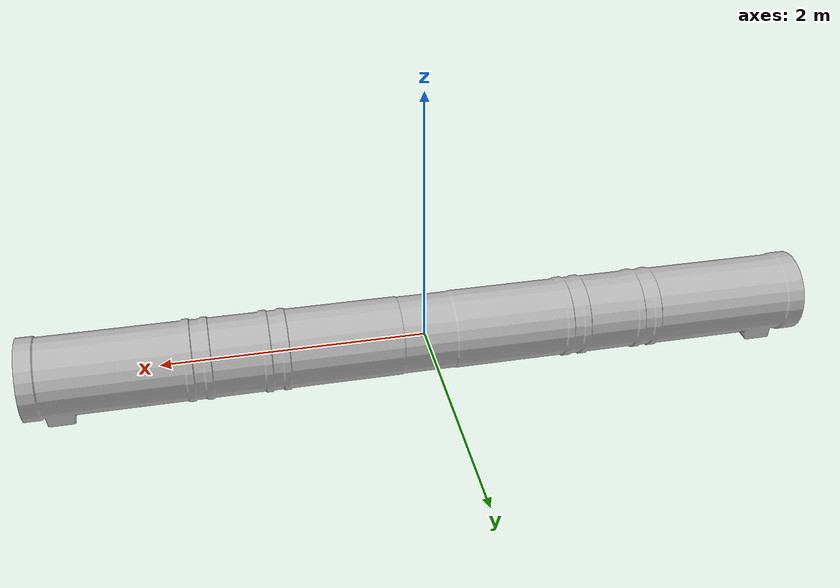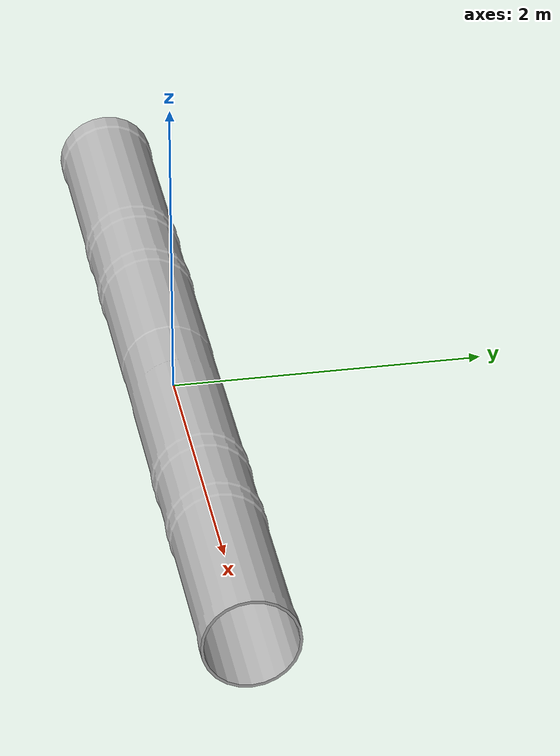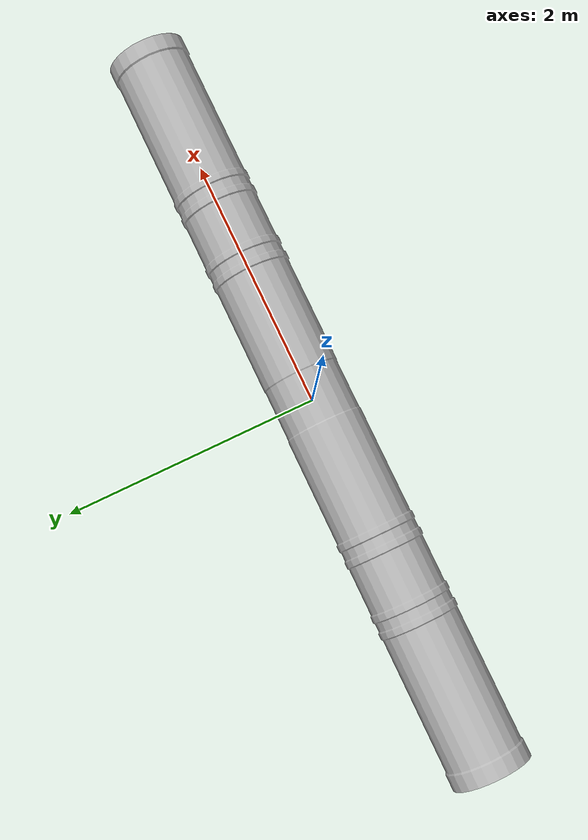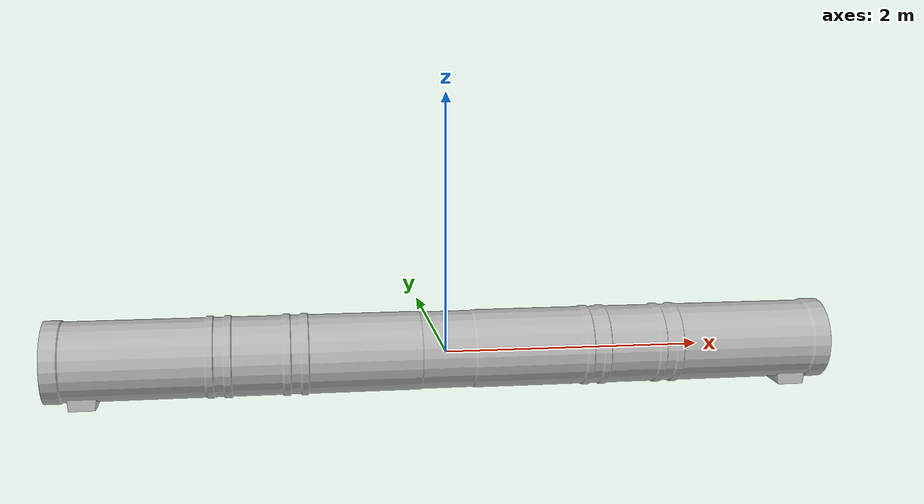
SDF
<sdf version='1.7'>
  <model name='OBJ_OneByOne'>
    <link name='base_link'>
      <inertial>
        <pose>0 -0 -0 0 -0 0</pose>
        <mass>891.435</mass>
        <inertia>
          <ixx>78.3146</ixx>
          <ixy>-0.002237</ixy>
          <ixz>0.189485</ixz>
          <iyy>3207.44</iyy>
          <iyz>0.000419</iyz>
          <izz>3202.99</izz>
        </inertia>
      </inertial>
      <collision name='base_link_collision'>
        <pose>0 0 0 0 -0 0</pose>
        <geometry>
          <mesh>
            <scale>0.001 0.001 0.001</scale>
            <uri>model://canister/meshes/MM40_Canister.obj</uri>
          </mesh>
        </geometry>
        <surface>
          <contact>
            <ode/>
          </contact>
          <friction>
            <ode>
              <mu>0.2</mu>
              <mu2>0.2</mu2>
            </ode>
          </friction>
        </surface>
      </collision>
      <visual name='base_link_visual'>
        <pose>0 0 0 0 -0 0</pose>
        <geometry>
          <mesh>
            <scale>0.001 0.001 0.001</scale>
            <uri>model://canister/meshes/MM40_Canister.obj</uri>
          </mesh>
        </geometry>
      </visual>
      <self_collide>1</self_collide>
      <gravity>1</gravity>
    </link>
    <static>0</static>
  </model>
</sdf>
